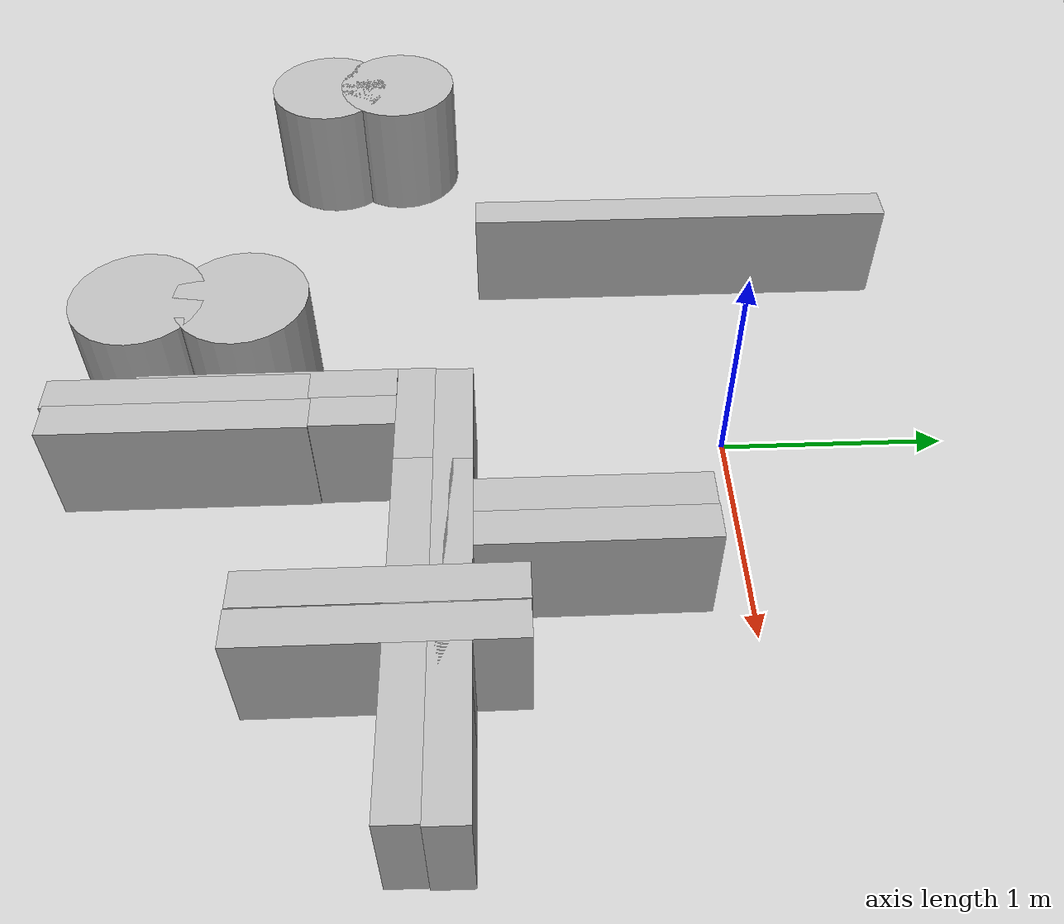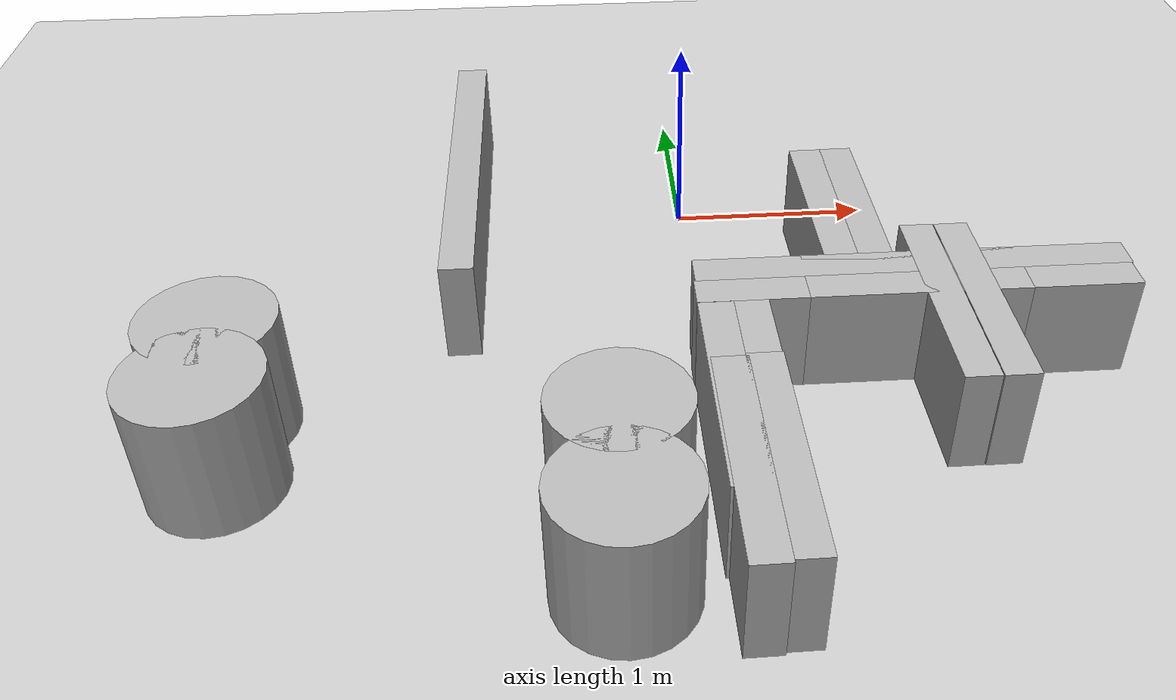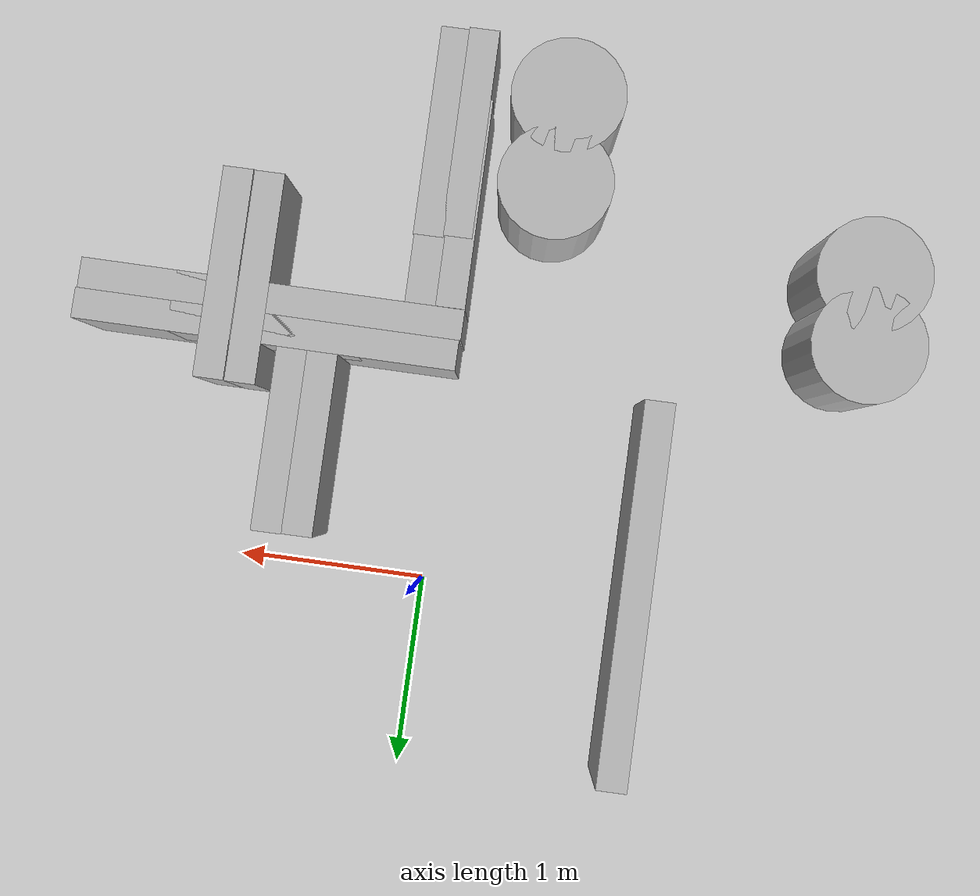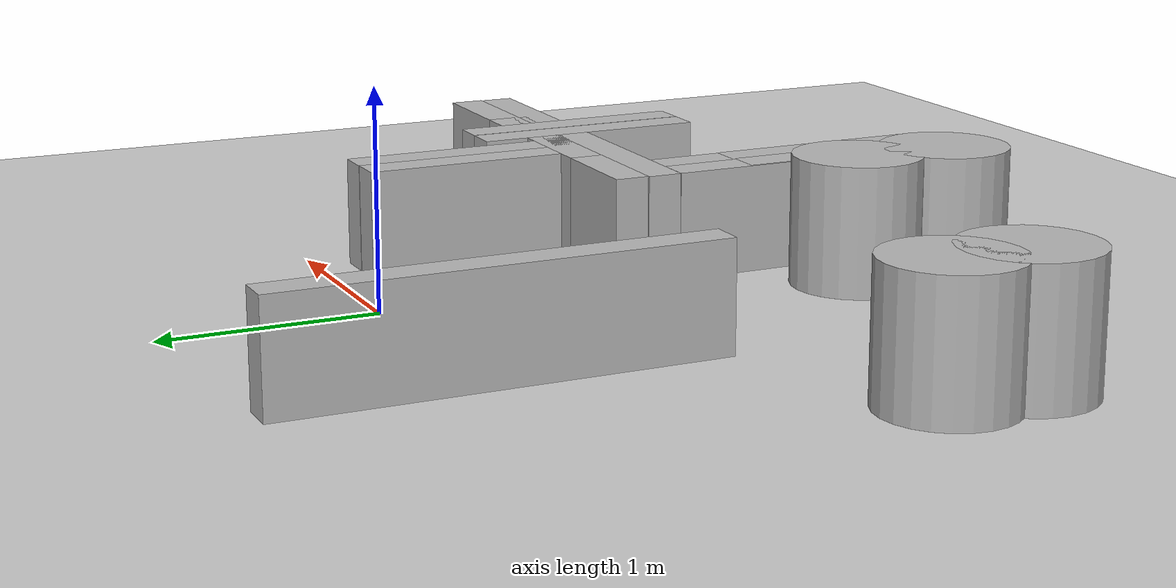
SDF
<sdf version="1.6">
 <world name="default">
  <model name="ground_plane">
   <static>1</static>
   <link name="link">
    <collision name="collision">
     <geometry><plane><normal>0 0 1</normal><size>100 100</size></plane></geometry>
     <surface><friction><ode><mu>100</mu><mu2>50</mu2></ode></friction></surface>
    </collision>
    <visual name="visual">
     <cast_shadows>0</cast_shadows>
     <geometry><plane><normal>0 0 1</normal><size>100 100</size></plane></geometry>
     <material>
      <script><uri>file://media/materials/scripts/gazebo.material</uri><name>Gazebo/Grey</name></script>
     </material>
    </visual>
   </link>
  </model>
  <model name="cylinder_1">
   <pose>-2.12191 -1.51039 0.3 0 -0 0</pose>
   <static>1</static>
   <link name="link">
    <collision name="collision">
     <geometry><cylinder><radius>0.3</radius><length>0.6</length></cylinder></geometry>
    </collision>
    <visual name="visual">
     <geometry><cylinder><radius>0.3</radius><length>0.6</length></cylinder></geometry>
    </visual>
   </link>
  </model>
  <model name="box_1_clone_clone_clone">
   <static>1</static>
   <pose>0.017852 -1.98689 0.250001 -3e-06 -0 -3.14</pose>
   <link name="link">
    <collision name="collision">
     <geometry><box><size>0.16 1.10724 0.5</size></box></geometry>
     <surface><friction><ode><mu>0.01</mu><mu2>0.01</mu2></ode></friction></surface>
    </collision>
    <visual name="visual"><geometry><box><size>0.16 1.10724 0.5</size></box></geometry></visual>
    <inertial>
     <inertia><ixx>1</ixx><ixy>0</ixy><ixz>0</ixz><iyy>1</iyy><iyz>0</iyz><izz>1</izz></inertia>
     <mass>1</mass>
    </inertial>
   </link>
  </model>
  <model name="box_1_clone_clone_1_clone_0_clone_clone">
   <link name="link">
    <inertial>
     <inertia><ixx>1</ixx><ixy>0</ixy><ixz>0</ixz><iyy>1</iyy><iyz>0</iyz><izz>1</izz></inertia>
     <mass>1</mass>
    </inertial>
    <visual name="ModelPreview_13::link::visual_2">
     <geometry><box><size>0.16 2 0.5</size></box></geometry>
     <material><shader type="vertex"><normal_map>__default__</normal_map></shader></material>
    </visual>
    <visual name="ModelPreview_13::link::visual_1">
     <geometry><box><size>0.16 1 0.5</size></box></geometry>
     <material><shader type="vertex"><normal_map>__default__</normal_map></shader></material>
    </visual>
    <visual name="visual">
     <geometry><box><size>0.16 2 0.5</size></box></geometry>
     <material><shader type="vertex"><normal_map>__default__</normal_map></shader></material>
    </visual>
    <collision name="collision">
     <geometry><box><size>0.16 1 0.5</size></box></geometry>
     <surface>
      <friction>
       <ode><mu>0.01</mu><mu2>0.01</mu2><fdir1>0 0 0</fdir1><slip1>0</slip1><slip2>0</slip2></ode>
       <torsional>
        <coefficient>1</coefficient>
        <patch_radius>0</patch_radius>
        <surface_radius>0</surface_radius>
        <use_patch_radius>1</use_patch_radius>
        <ode><slip>0</slip></ode>
       </torsional>
      </friction>
      <bounce><restitution_coefficient>0</restitution_coefficient><threshold>1e+06</threshold></bounce>
      <contact>
       <collide_without_contact>0</collide_without_contact>
       <collide_without_contact_bitmask>1</collide_without_contact_bitmask>
       <collide_bitmask>1</collide_bitmask>
       <ode>
        <soft_cfm>0</soft_cfm>
        <soft_erp>0.2</soft_erp>
        <kp>1e+13</kp>
        <kd>1</kd>
        <max_vel>0.01</max_vel>
        <min_depth>0</min_depth>
       </ode>
       <bullet>
        <split_impulse>1</split_impulse>
        <split_impulse_penetration_threshold>-0.01</split_impulse_penetration_threshold>
        <soft_cfm>0</soft_cfm>
        <soft_erp>0.2</soft_erp>
        <kp>1e+13</kp>
        <kd>1</kd>
       </bullet>
      </contact>
     </surface>
    </collision>
   </link>
   <static>1</static>
   <pose>0.93692 -1.35755 0.250001 -3e-06 -0 -1.57648</pose>
  </model>
  <model name="box_1_clone_clone_clone_clone_2">
   <static>1</static>
   <pose>0.633799 -0.722495 0.250001 -3e-06 -0 -3.14</pose>
   <link name="link">
    <collision name="collision">
     <geometry><box><size>0.16 1.10724 0.5</size></box></geometry>
     <surface><friction><ode><mu>0.01</mu><mu2>0.01</mu2></ode></friction></surface>
    </collision>
    <visual name="visual"><geometry><box><size>0.16 1.10724 0.5</size></box></geometry></visual>
    <inertial>
     <inertia><ixx>1</ixx><ixy>0</ixy><ixz>0</ixz><iyy>1</iyy><iyz>0</iyz><izz>1</izz></inertia>
     <mass>1</mass>
    </inertial>
   </link>
  </model>
  <model name="cylinder_1_clone_clone_clone">
   <pose>-0.43924 -2.13214 0.3 0 -0 0</pose>
   <static>1</static>
   <link name="link">
    <collision name="collision">
     <geometry><cylinder><radius>0.3</radius><length>0.6</length></cylinder></geometry>
    </collision>
    <visual name="visual">
     <geometry><cylinder><radius>0.3</radius><length>0.6</length></cylinder></geometry>
    </visual>
   </link>
  </model>
  <model name="box_1_clone_0_clone">
   <static>1</static>
   <pose>-1.12236 -0.101653 0.250001 0 -0 0</pose>
   <link name="link">
    <collision name="collision">
     <geometry><box><size>0.16 1.9931 0.5</size></box></geometry>
     <surface><friction><ode><mu>0.01</mu><mu2>0.01</mu2></ode></friction></surface>
    </collision>
    <visual name="visual"><geometry><box><size>0.16 1.9931 0.5</size></box></geometry></visual>
    <inertial>
     <inertia><ixx>1</ixx><ixy>0</ixy><ixz>0</ixz><iyy>1</iyy><iyz>0</iyz><izz>1</izz></inertia>
     <mass>1</mass>
    </inertial>
   </link>
  </model>
  <model name="box_1_clone_clone_clone_clone_2_clone">
   <static>1</static>
   <pose>0.791806 -0.720004 0.250001 -3e-06 -0 -3.14</pose>
   <link name="link">
    <collision name="collision">
     <geometry><box><size>0.16 1.10724 0.5</size></box></geometry>
     <surface><friction><ode><mu>0.01</mu><mu2>0.01</mu2></ode></friction></surface>
    </collision>
    <visual name="visual"><geometry><box><size>0.16 1.10724 0.5</size></box></geometry></visual>
    <inertial>
     <inertia><ixx>1</ixx><ixy>0</ixy><ixz>0</ixz><iyy>1</iyy><iyz>0</iyz><izz>1</izz></inertia>
     <mass>1</mass>
    </inertial>
   </link>
  </model>
  <model name="box_1_clone_clone_1_clone_0_clone_clone_clone">
   <link name="link">
    <inertial>
     <inertia><ixx>1</ixx><ixy>0</ixy><ixz>0</ixz><iyy>1</iyy><iyz>0</iyz><izz>1</izz></inertia>
     <mass>1</mass>
    </inertial>
    <visual name="ModelPreview_13::link::visual_2">
     <geometry><box><size>0.16 2 0.5</size></box></geometry>
     <material><shader type="vertex"><normal_map>__default__</normal_map></shader></material>
    </visual>
    <visual name="ModelPreview_13::link::visual_1">
     <geometry><box><size>0.16 1 0.5</size></box></geometry>
     <material><shader type="vertex"><normal_map>__default__</normal_map></shader></material>
    </visual>
    <visual name="visual">
     <geometry><box><size>0.16 2 0.5</size></box></geometry>
     <material><shader type="vertex"><normal_map>__default__</normal_map></shader></material>
    </visual>
    <collision name="collision">
     <geometry><box><size>0.16 1 0.5</size></box></geometry>
     <surface>
      <friction>
       <ode><mu>0.01</mu><mu2>0.01</mu2><fdir1>0 0 0</fdir1><slip1>0</slip1><slip2>0</slip2></ode>
       <torsional>
        <coefficient>1</coefficient>
        <patch_radius>0</patch_radius>
        <surface_radius>0</surface_radius>
        <use_patch_radius>1</use_patch_radius>
        <ode><slip>0</slip></ode>
       </torsional>
      </friction>
      <bounce><restitution_coefficient>0</restitution_coefficient><threshold>1e+06</threshold></bounce>
      <contact>
       <collide_without_contact>0</collide_without_contact>
       <collide_without_contact_bitmask>1</collide_without_contact_bitmask>
       <collide_bitmask>1</collide_bitmask>
       <ode>
        <soft_cfm>0</soft_cfm>
        <soft_erp>0.2</soft_erp>
        <kp>1e+13</kp>
        <kd>1</kd>
        <max_vel>0.01</max_vel>
        <min_depth>0</min_depth>
       </ode>
       <bullet>
        <split_impulse>1</split_impulse>
        <split_impulse_penetration_threshold>-0.01</split_impulse_penetration_threshold>
        <soft_cfm>0</soft_cfm>
        <soft_erp>0.2</soft_erp>
        <kp>1e+13</kp>
        <kd>1</kd>
       </bullet>
      </contact>
     </surface>
    </collision>
   </link>
   <static>1</static>
   <pose>0.945755 -1.19837 0.250001 -3e-06 -0 -1.57648</pose>
  </model>
  <model name="box_1_clone_clone_clone_clone">
   <static>1</static>
   <pose>0.172076 -1.98667 0.250001 -3e-06 -0 -3.14</pose>
   <link name="link">
    <collision name="collision">
     <geometry><box><size>0.16 1.10724 0.5</size></box></geometry>
     <surface><friction><ode><mu>0.01</mu><mu2>0.01</mu2></ode></friction></surface>
    </collision>
    <visual name="visual"><geometry><box><size>0.16 1.10724 0.5</size></box></geometry></visual>
    <inertial>
     <inertia><ixx>1</ixx><ixy>0</ixy><ixz>0</ixz><iyy>1</iyy><iyz>0</iyz><izz>1</izz></inertia>
     <mass>1</mass>
    </inertial>
   </link>
  </model>
  <model name="box_1_clone_clone_clone_clone_clone">
   <static>1</static>
   <pose>0.17817 -2.34405 0.250001 -3e-06 -0 -3.14</pose>
   <link name="link">
    <collision name="collision">
     <geometry><box><size>0.16 1.10724 0.5</size></box></geometry>
     <surface><friction><ode><mu>0.01</mu><mu2>0.01</mu2></ode></friction></surface>
    </collision>
    <visual name="visual"><geometry><box><size>0.16 1.10724 0.5</size></box></geometry></visual>
    <inertial>
     <inertia><ixx>1</ixx><ixy>0</ixy><ixz>0</ixz><iyy>1</iyy><iyz>0</iyz><izz>1</izz></inertia>
     <mass>1</mass>
    </inertial>
   </link>
  </model>
  <model name="box_1_clone_clone_clone_clone_0">
   <static>1</static>
   <pose>0.031581 -2.35686 0.250001 -3e-06 -0 -3.14</pose>
   <link name="link">
    <collision name="collision">
     <geometry><box><size>0.16 1.10724 0.5</size></box></geometry>
     <surface><friction><ode><mu>0.01</mu><mu2>0.01</mu2></ode></friction></surface>
    </collision>
    <visual name="visual"><geometry><box><size>0.16 1.10724 0.5</size></box></geometry></visual>
    <inertial>
     <inertia><ixx>1</ixx><ixy>0</ixy><ixz>0</ixz><iyy>1</iyy><iyz>0</iyz><izz>1</izz></inertia>
     <mass>1</mass>
    </inertial>
   </link>
  </model>
  <model name="cylinder_1_clone_0">
   <pose>-2.10817 -1.87423 0.3 0 -0 0</pose>
   <static>1</static>
   <link name="link">
    <collision name="collision">
     <geometry><cylinder><radius>0.3</radius><length>0.6</length></cylinder></geometry>
    </collision>
    <visual name="visual">
     <geometry><cylinder><radius>0.3</radius><length>0.6</length></cylinder></geometry>
    </visual>
   </link>
  </model>
  <model name="cylinder_1_clone_clone_clone_clone">
   <pose>-0.447788 -2.58828 0.3 0 -0 0</pose>
   <static>1</static>
   <link name="link">
    <collision name="collision">
     <geometry><cylinder><radius>0.3</radius><length>0.6</length></cylinder></geometry>
    </collision>
    <visual name="visual">
     <geometry><cylinder><radius>0.3</radius><length>0.6</length></cylinder></geometry>
    </visual>
   </link>
  </model>
  <model name="box_1_clone_clone_clone_clone_2_clone_clone">
   <static>1</static>
   <pose>1.20045 -1.46053 0.250001 -3e-06 -0 -3.14</pose>
   <link name="link">
    <collision name="collision">
     <geometry><box><size>0.16 1.10724 0.5</size></box></geometry>
     <surface><friction><ode><mu>0.01</mu><mu2>0.01</mu2></ode></friction></surface>
    </collision>
    <visual name="visual"><geometry><box><size>0.16 1.10724 0.5</size></box></geometry></visual>
    <inertial>
     <inertia><ixx>1</ixx><ixy>0</ixy><ixz>0</ixz><iyy>1</iyy><iyz>0</iyz><izz>1</izz></inertia>
     <mass>1</mass>
    </inertial>
   </link>
  </model>
  <model name="box_1_clone_clone_clone_clone_2_clone_clone_0">
   <static>1</static>
   <pose>1.03609 -1.4584 0.250001 -3e-06 -0 -3.14</pose>
   <link name="link">
    <collision name="collision">
     <geometry><box><size>0.16 1.10724 0.5</size></box></geometry>
     <surface><friction><ode><mu>0.01</mu><mu2>0.01</mu2></ode></friction></surface>
    </collision>
    <visual name="visual"><geometry><box><size>0.16 1.10724 0.5</size></box></geometry></visual>
    <inertial>
     <inertia><ixx>1</ixx><ixy>0</ixy><ixz>0</ixz><iyy>1</iyy><iyz>0</iyz><izz>1</izz></inertia>
     <mass>1</mass>
    </inertial>
   </link>
  </model>
 </world>
</sdf>
